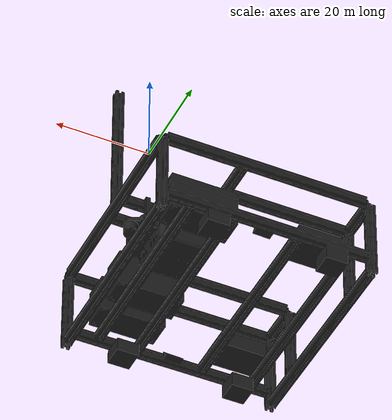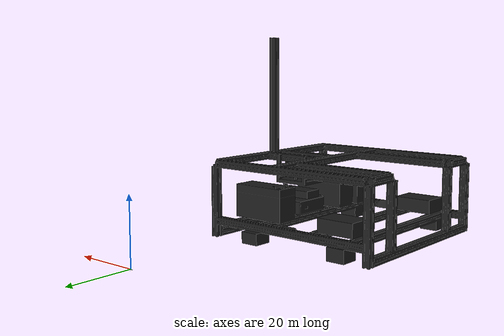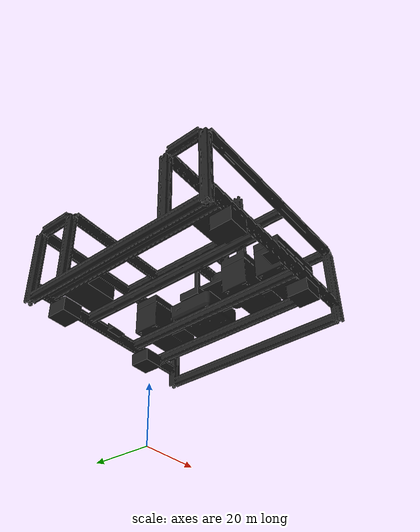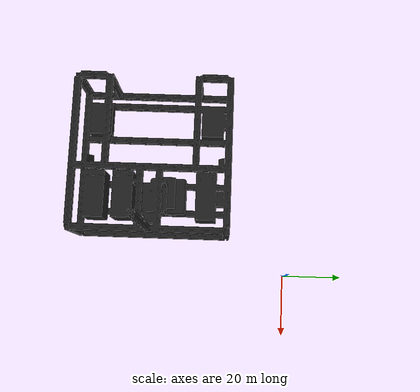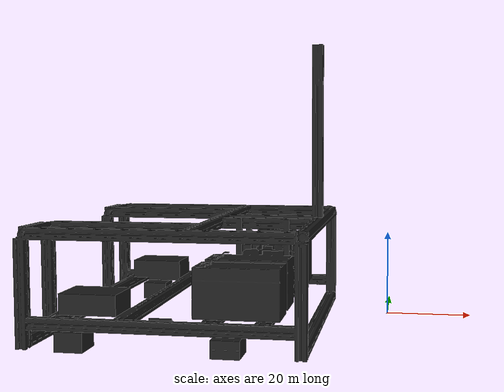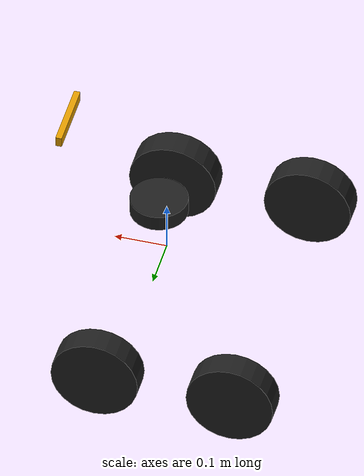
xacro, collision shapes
<?xml version="1.0" ?>
<robot name="warebot" xmlns:xacro="http://ros.org/wiki/xacro">
  <xacro:include filename="$(find warebot_2020_description)/urdf/material.xacro"/>
  <xacro:include filename="$(find warebot_2020_description)/urdf/warebot.gazebo.xacro"/>

  <xacro:property name="asus_cam_rgb_px" value="0.005"/>
  <xacro:property name="asus_cam_rgb_py" value="0.018"/>
  <xacro:property name="asus_cam_rgb_pz" value="0.013"/>
  <xacro:property name="asus_cam_depth_offset" value="0.01"/>

  <!--World link as base foot used for fixing robot to Gazebo-->
  <link name="base_footprint"></link>

  <joint name="base_joint" type="fixed">
    <parent link="base_footprint"/>
    <child link="base_link" />
    <origin xyz="0 0 0.010" rpy="0 0 0"/>
  </joint>

  <!--4 wheel robot-->
  <link name="base_link">
    <inertial>
      <mass value="60"/>
        <origin rpy="0 0 0" xyz="0 0 0.1"/>
        <inertia ixx="1.215" ixy="0.0" ixz="0.0"
                 iyy="1.215" iyz="0.0"
                 izz="2.075"/>
    </inertial>

    <collision name="chassis_collision">
      <origin rpy="0 0 0" xyz="0 0 0"/>
      <geometry>
        <mesh filename="package://warebot_2020_description/meshes/Chassis.dae" scale="1.0 1.0 1.0"/>
      </geometry>
    </collision>

    <visual name="chassis_visual">
      <origin rpy="0 0 0" xyz="0 0 0"/>
      <geometry>
        <mesh filename="package://warebot_2020_description/meshes/Chassis.dae" scale="1.0 1.0 1.0"/>
      </geometry>
      <material name="light_black"/>
    </visual>
  </link>

  <joint name="left_front_joint" type="continuous">
    <parent link="base_link"/>
    <child link="wheel_left_front_link"/>
    <origin rpy="0 0 0" xyz="0.06 0.27 -0.1"/>
    <axis xyz="0 1 0"/>
    <limit effort="90" velocity="20"/>
  </joint>

  <link name="wheel_left_front_link">
    <inertial>
      <mass value="5"/>
      <origin rpy="0 0 0" xyz="0 0 0"/>
      <inertia ixx="0.0123" ixy="0" ixz="0"
               iyy="0.0226" iyz="0"
               izz="0.0123"/>
    </inertial>

    <collision name="wheel_left_front_collision">
      <origin rpy="1.5707 0 0" xyz="0 0 0"/>
        <geometry>
          <cylinder length="0.05" radius="0.0835"/>
        </geometry>
    </collision>

    <visual name="wheel_left_front_visual">
      <origin rpy="0 0 3.14" xyz="0 0 0"/>
      <geometry>
          <mesh filename="package://warebot_2020_description/meshes/Wheel.dae" scale="1.0 1.0 1.0"/>
      </geometry>
      <material name="dark"/>
    </visual>
  </link>

  <joint name="right_front_joint" type="continuous">
    <parent link="base_link"/>
    <child link="wheel_right_front_link"/>
    <origin rpy="0 0 0" xyz="0.06 -0.285 -0.1"/>
    <axis xyz="0 1 0"/>
    <limit effort="90" velocity="20"/>
  </joint>

  <link name="wheel_right_front_link">
    <inertial>
      <mass value="5"/>
      <origin rpy="0 0 0" xyz="0 0 0"/>
      <inertia ixx="0.0123" ixy="0" ixz="0"
               iyy="0.0226" iyz="0"
               izz="0.0123"/>
    </inertial>

    <collision name="wheel_right_front_collision">
      <origin rpy="1.5707 0 0" xyz="0 0 0"/>
      <geometry>
        <cylinder length="0.05" radius="0.0835"/>
      </geometry>
    </collision>

    <visual name="wheel_right_front_visual">
      <origin rpy="0 0 0" xyz="0 0 0"/>
      <geometry>
        <mesh filename="package://warebot_2020_description/meshes/Wheel.dae" scale="1.0 1.0 1.0"/>
      </geometry>
      <material name="dark"/>
    </visual>
  </link>

  <joint name="left_rear_joint" type="continuous">
    <parent link="base_link"/>
    <child link="wheel_left_rear_link"/>
    <origin rpy="0 0 0" xyz="-0.2 0.27 -0.1"/>
    <axis xyz="0 1 0"/>
    <limit effort="90" velocity="20"/>
  </joint>

  <link name="wheel_left_rear_link">
    <inertial>
      <mass value="5"/>
      <origin rpy="0 0 0" xyz="0 0 0"/>
      <inertia ixx="0.0123" ixy="0" ixz="0"
               iyy="0.0226" iyz="0"
               izz="0.0123"/>
    </inertial>

    <collision name="wheel_left_rear_collision">
      <origin rpy="1.5707 0 0" xyz="0 0 0"/>
        <geometry>
          <cylinder length="0.05" radius="0.0835"/>
        </geometry>
    </collision>

    <visual name="wheel_left_front_visual">
      <origin rpy="0 0 3.14" xyz="0 0 0"/>
      <geometry>
          <mesh filename="package://warebot_2020_description/meshes/Wheel.dae" scale="1.0 1.0 1.0"/>
      </geometry>
      <material name="dark"/>
    </visual>
  </link>

  <joint name="right_rear_joint" type="continuous">
    <parent link="base_link"/>
    <child link="wheel_right_rear_link"/>
    <origin rpy="0 0 0" xyz="-0.2 -0.285 -0.1"/>
    <axis xyz="0 1 0"/>
    <limit effort="90" velocity="20"/>
  </joint>

  <link name="wheel_right_rear_link">
    <inertial>
      <mass value="5"/>
      <origin rpy="0 0 0" xyz="0 0 0"/>
      <inertia ixx="0.0123" ixy="0" ixz="0"
               iyy="0.0226" iyz="0"
               izz="0.0123"/>
    </inertial>

    <collision name="wheel_right_rear_collision">
      <origin rpy="1.5707 0 0" xyz="0 0 0"/>
      <geometry>
        <cylinder length="0.05" radius="0.0835"/>
      </geometry>
    </collision>

    <visual name="wheel_right_rear_visual">
      <origin rpy="0 0 0" xyz="0 0 0"/>
      <geometry>
        <mesh filename="package://warebot_2020_description/meshes/Wheel.dae" scale="1.0 1.0 1.0"/>
      </geometry>
      <material name="dark"/>
    </visual>
  </link>

  <joint name="imu_joint" type="fixed">
    <parent link="base_link"/>
    <child link="imu_link"/>
    <origin xyz="0.0 0 0.068" rpy="0 0 0"/>
  </joint>
  <link name="imu_link"/>

  <joint name="scan_joint" type="fixed">
    <parent link="base_link"/>
    <child link="base_scan"/>
    <origin xyz="0 0 0.1" rpy="0 0 0"/>
  </joint>

  <link name="base_scan">
    <visual>
      <origin xyz="0 0 0" rpy="0 0 0"/>
      <geometry>
        <mesh filename="package://warebot_2020_description/meshes/lds.stl" scale="0.001 0.001 0.001"/>
      </geometry>
      <material name="dark"/>
    </visual>

    <collision>
      <origin xyz="0.015 0 -0.0065" rpy="0 0 0"/>
      <geometry>
        <cylinder length="0.0315" radius="0.055"/>
      </geometry>
    </collision>

    <inertial>
      <mass value="0.114" />
      <origin xyz="0 0 0" />
      <inertia ixx="0.001" ixy="0.0" ixz="0.0"
               iyy="0.001" iyz="0.0"
               izz="0.001" />
    </inertial>
  </link>

  <joint name="camera_joint" type="fixed">
    <origin xyz="0.19 -0.075 0.25" rpy="0 0 0"/>
    <parent link="base_link"/>
    <child link="camera_link"/>
  </joint>

  <link name="camera_link">
    <visual>
     <origin xyz="0 0 0" rpy="1.57 0 1.57"/>
      <geometry>
       <mesh filename="package://turtlebot3_description/meshes/sensors/r200.dae" />
      </geometry>
    </visual>
    <collision>
      <origin xyz="0.003 0.065 0.007" rpy="0 0 0"/>
      <geometry>
        <box size="0.012 0.132 0.020"/>
      </geometry>
    </collision>
  </link>

  <joint name="camera_rgb_joint" type="fixed">
    <origin xyz="${asus_cam_rgb_px} ${asus_cam_rgb_py} ${asus_cam_rgb_pz}" rpy="0 0 0"/>
    <parent link="camera_link"/>
    <child link="camera_rgb_frame"/>
  </joint>
  <link name="camera_rgb_frame"/>

  <joint name="camera_rgb_optical_joint" type="fixed">
    <origin xyz="0 0 0" rpy="-1.57 0 -1.57"/>
    <parent link="camera_rgb_frame"/>
    <child link="camera_rgb_optical_frame"/>
  </joint>
  <link name="camera_rgb_optical_frame"/>

  <joint name="camera_depth_joint" type="fixed">
    <origin xyz="${asus_cam_rgb_px} ${asus_cam_rgb_py + asus_cam_depth_offset} ${asus_cam_rgb_pz}" rpy="0 0 0"/>
    <parent link="camera_link"/>
    <child link="camera_depth_frame"/>
  </joint>
  <link name="camera_depth_frame"/>

  <joint name="camera_depth_optical_joint" type="fixed">
    <origin xyz="0 0 0" rpy="-1.57 0 -1.57"/>
    <parent link="camera_depth_frame"/>
    <child link="camera_depth_optical_frame"/>
  </joint>
  <link name="camera_depth_optical_frame"/>

</robot>
